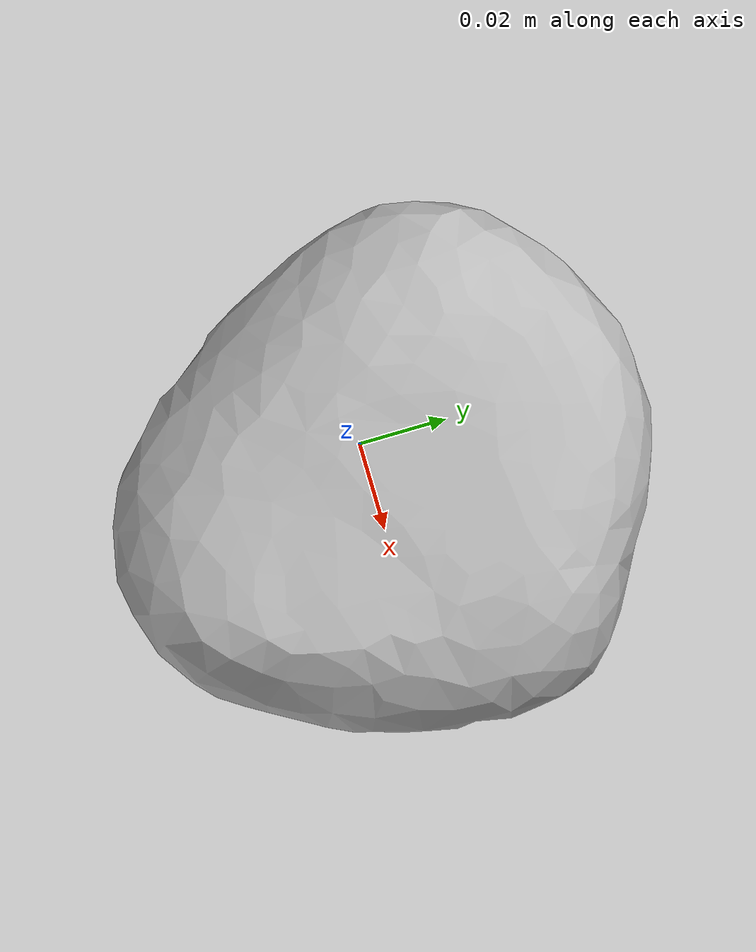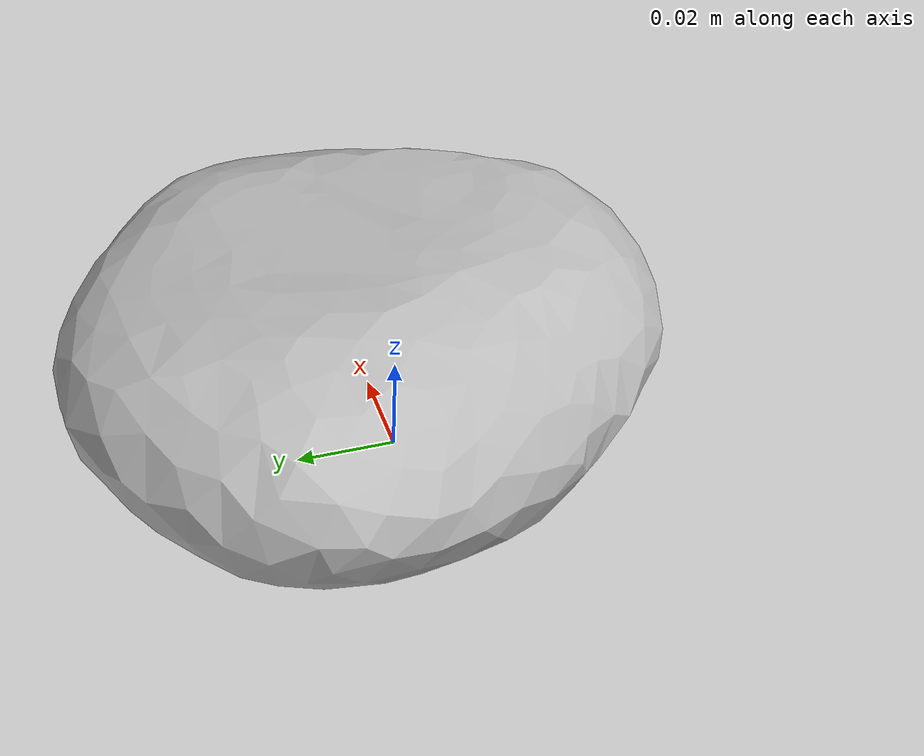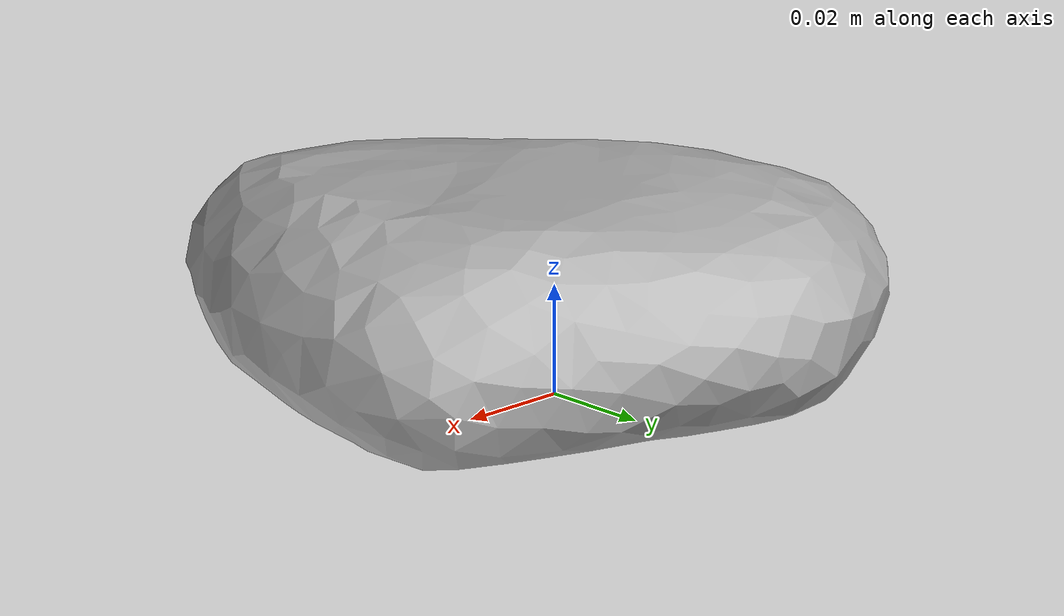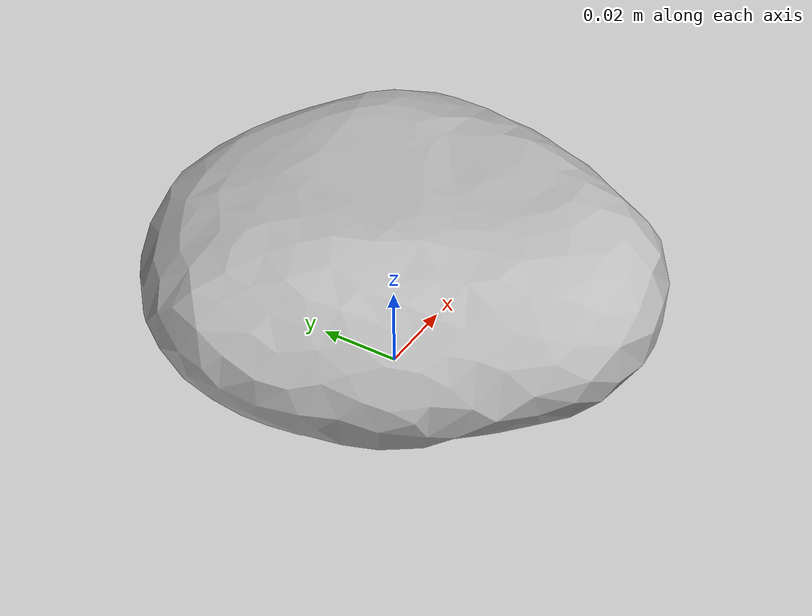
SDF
<?xml version="1.0" ?>
<sdf version="1.5">
  <model name="rock4">
    <static>true</static>
    <link name="link">
      <collision name="collision">
        <geometry>
          <mesh>
            <uri>model://rock4/meshes/rock4.dae</uri>
          </mesh>
        </geometry>
      </collision>
      <visual name="visual">
        <geometry>
          <mesh>
            <uri>model://rock4/meshes/rock4.dae</uri>
          </mesh>
        </geometry>
      </visual>
    </link>
  </model>
</sdf>
